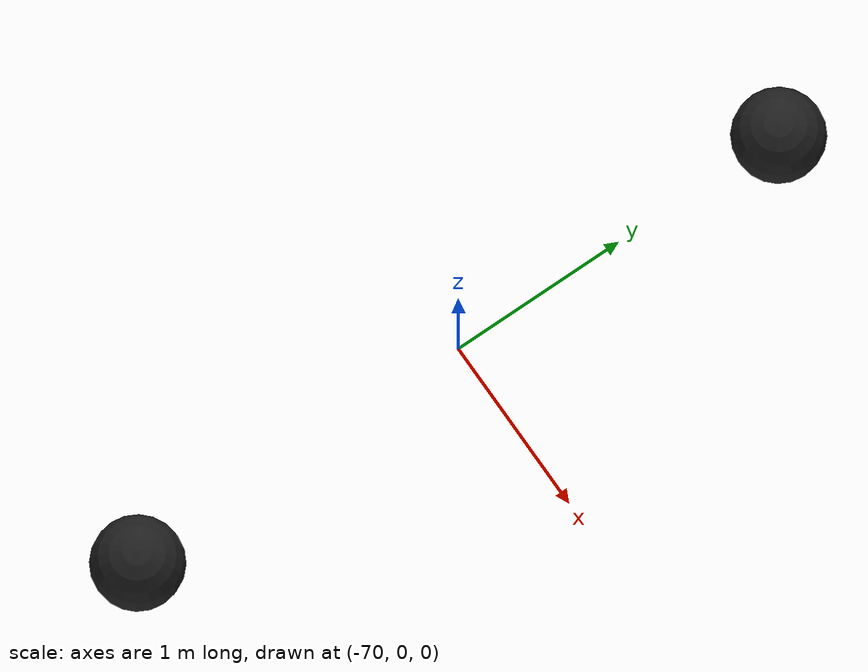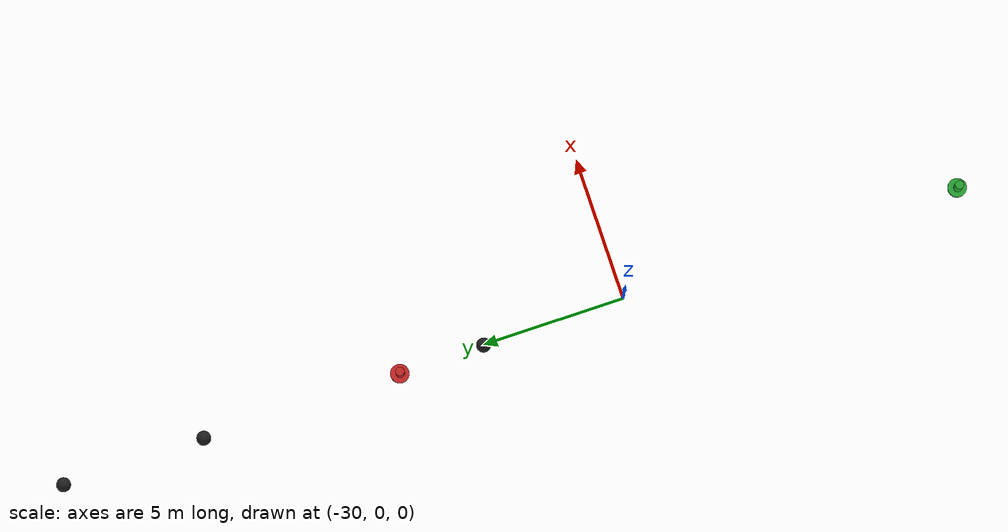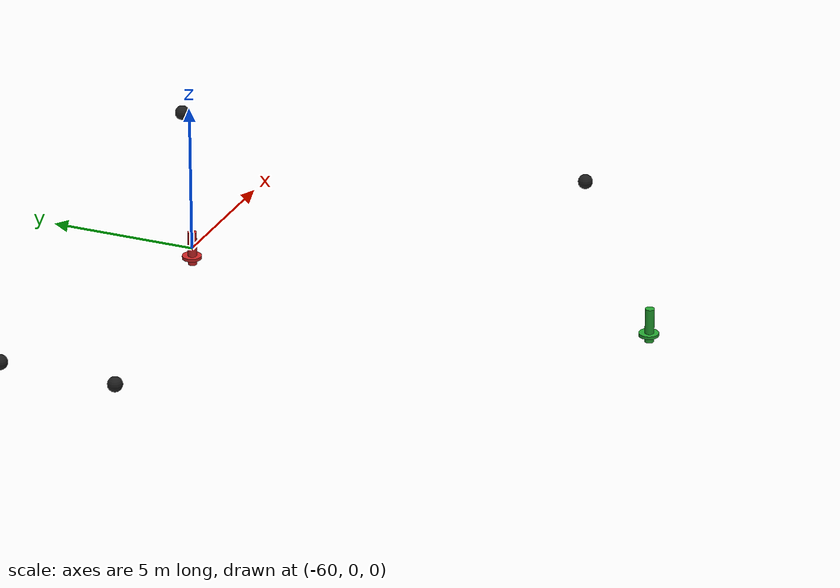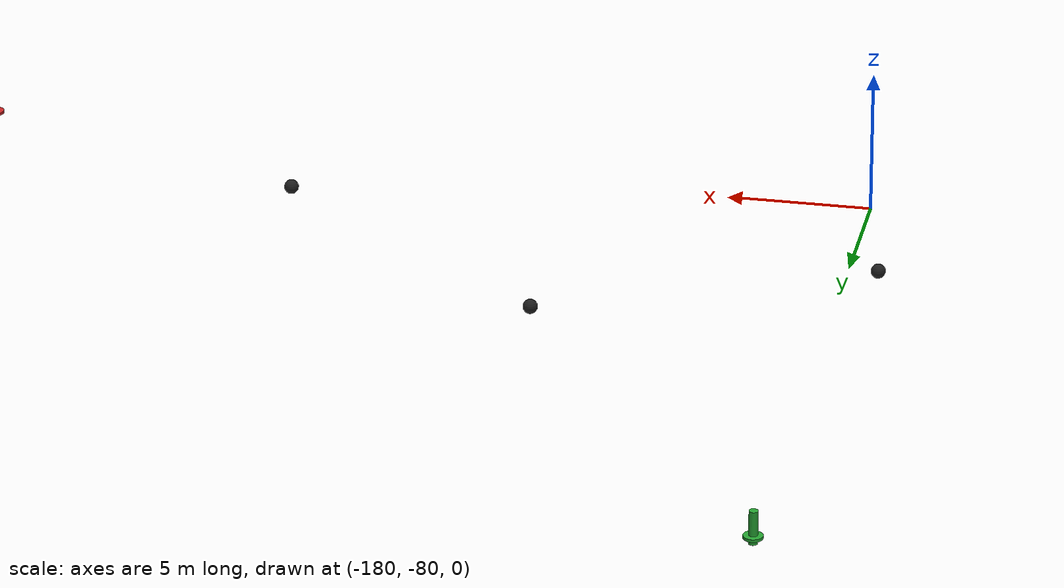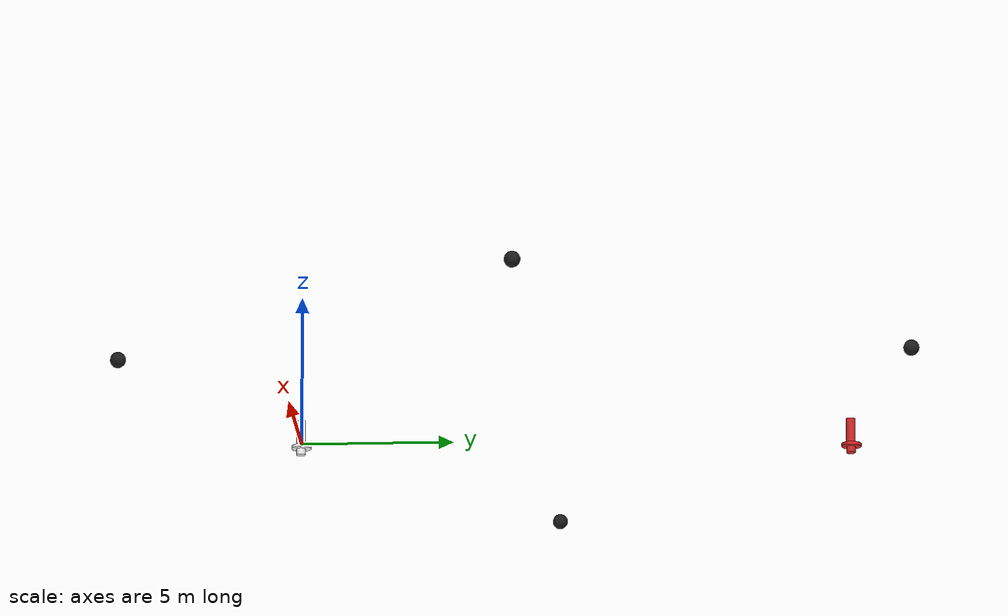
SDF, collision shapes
<?xml version="1.0"?>
<!-- Model for the short navigation course -->
<sdf version="1.6">
  <model name="short_navigation_course_5">

    <!-- Starboard_border -->
    <include>
      <name>red_bound_0</name>
      <pose>0 18 0 0 0 0</pose>
      <uri>https://fuel.gazebosim.org/1.0/openrobotics/models/mb_marker_buoy_red</uri>

      <plugin name="vrx::PolyhedraBuoyancyDrag"
        filename="libPolyhedraBuoyancyDrag.so">
        <fluid_density>1000</fluid_density>
        <fluid_level>0.0</fluid_level>
        <linear_drag>25.0</linear_drag>
        <angular_drag>2.0</angular_drag>
        <buoyancy name="collision_outer">
          <link_name>link</link_name>
          <pose>0 0 -0.3 0 0 0</pose>
          <geometry>
            <cylinder>
              <radius>0.325</radius>
              <length>0.1</length>
            </cylinder>
          </geometry>
        </buoyancy>
        <wavefield>
          <size>1000 1000</size>
          <cell_count>50 50</cell_count>
          <wave>
            <model>PMS</model>
            <period>5.0</period>
            <number>3</number>
            <scale>1.1</scale>
            <gain>0.3</gain>
            <direction>1 0</direction>
            <angle>0.4</angle>
            <tau>2.0</tau>
            <amplitude>0.0</amplitude>
            <steepness>0.0</steepness>
          </wave>
        </wavefield>
      </plugin>

      <plugin filename="gz-sim-odometry-publisher-system"
        name="gz::sim::systems::OdometryPublisher">
        <dimensions>3</dimensions>
        <odom_publish_frequency>10.0000</odom_publish_frequency>
        <odom_frame>world</odom_frame>
        <robot_base_frame>robotx_gt/red_bound_0</robot_base_frame>
        <odom_topic>/robotx/red_bound_0/pose</odom_topic>
        <gaussian_noise>0.0</gaussian_noise>
        <name>red_bound_0/pose</name>
      </plugin>
    </include>

    <include>
      <name>red_bound_1</name>
      <pose>-30 8 0 0 0 0</pose>
      <uri>https://fuel.gazebosim.org/1.0/openrobotics/models/mb_marker_buoy_red</uri>

      <plugin name="vrx::PolyhedraBuoyancyDrag"
        filename="libPolyhedraBuoyancyDrag.so">
        <fluid_density>1000</fluid_density>
        <fluid_level>0.0</fluid_level>
        <linear_drag>25.0</linear_drag>
        <angular_drag>2.0</angular_drag>
        <buoyancy name="collision_outer">
          <link_name>link</link_name>
          <pose>0 0 -0.3 0 0 0</pose>
          <geometry>
            <cylinder>
              <radius>0.325</radius>
              <length>0.1</length>
            </cylinder>
          </geometry>
        </buoyancy>
        <wavefield>
          <size>1000 1000</size>
          <cell_count>50 50</cell_count>
          <wave>
            <model>PMS</model>
            <period>5.0</period>
            <number>3</number>
            <scale>1.1</scale>
            <gain>0.3</gain>
            <direction>1 0</direction>
            <angle>0.4</angle>
            <tau>2.0</tau>
            <amplitude>0.0</amplitude>
            <steepness>0.0</steepness>
          </wave>
        </wavefield>
      </plugin>

      <plugin filename="gz-sim-odometry-publisher-system"
        name="gz::sim::systems::OdometryPublisher">
        <dimensions>3</dimensions>
        <odom_publish_frequency>10.0000</odom_publish_frequency>
        <odom_frame>world</odom_frame>
        <robot_base_frame>robotx_gt/red_bound_1</robot_base_frame>
        <odom_topic>/robotx/red_bound_1/pose</odom_topic>
        <gaussian_noise>0.0</gaussian_noise>
        <name>red_bound_1/pose</name>
      </plugin>
    </include>

    <include>
      <name>red_bound_2</name>
      <pose>-60 0 0 0 0 0</pose>
      <uri>https://fuel.gazebosim.org/1.0/openrobotics/models/mb_marker_buoy_red</uri>

      <plugin name="vrx::PolyhedraBuoyancyDrag"
        filename="libPolyhedraBuoyancyDrag.so">
        <fluid_density>1000</fluid_density>
        <fluid_level>0.0</fluid_level>
        <linear_drag>25.0</linear_drag>
        <angular_drag>2.0</angular_drag>
        <buoyancy name="collision_outer">
          <link_name>link</link_name>
          <pose>0 0 -0.3 0 0 0</pose>
          <geometry>
            <cylinder>
              <radius>0.325</radius>
              <length>0.1</length>
            </cylinder>
          </geometry>
        </buoyancy>
        <wavefield>
          <size>1000 1000</size>
          <cell_count>50 50</cell_count>
          <wave>
            <model>PMS</model>
            <period>5.0</period>
            <number>3</number>
            <scale>1.1</scale>
            <gain>0.3</gain>
            <direction>1 0</direction>
            <angle>0.4</angle>
            <tau>2.0</tau>
            <amplitude>0.0</amplitude>
            <steepness>0.0</steepness>
          </wave>
        </wavefield>
      </plugin>

      <plugin filename="gz-sim-odometry-publisher-system"
        name="gz::sim::systems::OdometryPublisher">
        <dimensions>3</dimensions>
        <odom_publish_frequency>10.0000</odom_publish_frequency>
        <odom_frame>world</odom_frame>
        <robot_base_frame>robotx_gt/red_bound_2</robot_base_frame>
        <odom_topic>/robotx/red_bound_2/pose</odom_topic>
        <gaussian_noise>0.0</gaussian_noise>
        <name>red_bound_2/pose</name>
      </plugin>
    </include>

    <include>
      <name>red_bound_3</name>
      <pose>-90 12 0 0 0 0</pose>
      <uri>https://fuel.gazebosim.org/1.0/openrobotics/models/mb_marker_buoy_red</uri>

      <plugin name="vrx::PolyhedraBuoyancyDrag"
        filename="libPolyhedraBuoyancyDrag.so">
        <fluid_density>1000</fluid_density>
        <fluid_level>0.0</fluid_level>
        <linear_drag>25.0</linear_drag>
        <angular_drag>2.0</angular_drag>
        <buoyancy name="collision_outer">
          <link_name>link</link_name>
          <pose>0 0 -0.3 0 0 0</pose>
          <geometry>
            <cylinder>
              <radius>0.325</radius>
              <length>0.1</length>
            </cylinder>
          </geometry>
        </buoyancy>
        <wavefield>
          <size>1000 1000</size>
          <cell_count>50 50</cell_count>
          <wave>
            <model>PMS</model>
            <period>5.0</period>
            <number>3</number>
            <scale>1.1</scale>
            <gain>0.3</gain>
            <direction>1 0</direction>
            <angle>0.4</angle>
            <tau>2.0</tau>
            <amplitude>0.0</amplitude>
            <steepness>0.0</steepness>
          </wave>
        </wavefield>
      </plugin>

      <plugin filename="gz-sim-odometry-publisher-system"
        name="gz::sim::systems::OdometryPublisher">
        <dimensions>3</dimensions>
        <odom_publish_frequency>10.0000</odom_publish_frequency>
        <odom_frame>world</odom_frame>
        <robot_base_frame>robotx_gt/red_bound_3</robot_base_frame>
        <odom_topic>/robotx/red_bound_3/pose</odom_topic>
        <gaussian_noise>0.0</gaussian_noise>
        <name>red_bound_3/pose</name>
      </plugin>
    </include>

    <include>
      <name>red_bound_4</name>
      <pose>-140 0 0 0 0 0</pose>
      <uri>https://fuel.gazebosim.org/1.0/openrobotics/models/mb_marker_buoy_red</uri>

      <plugin name="vrx::PolyhedraBuoyancyDrag"
        filename="libPolyhedraBuoyancyDrag.so">
        <fluid_density>1000</fluid_density>
        <fluid_level>0.0</fluid_level>
        <linear_drag>25.0</linear_drag>
        <angular_drag>2.0</angular_drag>
        <buoyancy name="collision_outer">
          <link_name>link</link_name>
          <pose>0 0 -0.3 0 0 0</pose>
          <geometry>
            <cylinder>
              <radius>0.325</radius>
              <length>0.1</length>
            </cylinder>
          </geometry>
        </buoyancy>
        <wavefield>
          <size>1000 1000</size>
          <cell_count>50 50</cell_count>
          <wave>
            <model>PMS</model>
            <period>5.0</period>
            <number>3</number>
            <scale>1.1</scale>
            <gain>0.3</gain>
            <direction>1 0</direction>
            <angle>0.4</angle>
            <tau>2.0</tau>
            <amplitude>0.0</amplitude>
            <steepness>0.0</steepness>
          </wave>
        </wavefield>
      </plugin>

      <plugin filename="gz-sim-odometry-publisher-system"
        name="gz::sim::systems::OdometryPublisher">
        <dimensions>3</dimensions>
        <odom_publish_frequency>10.0000</odom_publish_frequency>
        <odom_frame>world</odom_frame>
        <robot_base_frame>robotx_gt/red_bound_4</robot_base_frame>
        <odom_topic>/robotx/red_bound_4/pose</odom_topic>
        <gaussian_noise>0.0</gaussian_noise>
        <name>red_bound_4/pose</name>
      </plugin>
    </include>

    <include>
      <name>red_bound_5</name>
      <pose>-180 -10 0 0 0 0</pose>
      <uri>https://fuel.gazebosim.org/1.0/openrobotics/models/mb_marker_buoy_red</uri>

      <plugin name="vrx::PolyhedraBuoyancyDrag"
        filename="libPolyhedraBuoyancyDrag.so">
        <fluid_density>1000</fluid_density>
        <fluid_level>0.0</fluid_level>
        <linear_drag>25.0</linear_drag>
        <angular_drag>2.0</angular_drag>
        <buoyancy name="collision_outer">
          <link_name>link</link_name>
          <pose>0 0 -0.3 0 0 0</pose>
          <geometry>
            <cylinder>
              <radius>0.325</radius>
              <length>0.1</length>
            </cylinder>
          </geometry>
        </buoyancy>
        <wavefield>
          <size>1000 1000</size>
          <cell_count>50 50</cell_count>
          <wave>
            <model>PMS</model>
            <period>5.0</period>
            <number>3</number>
            <scale>1.1</scale>
            <gain>0.3</gain>
            <direction>1 0</direction>
            <angle>0.4</angle>
            <tau>2.0</tau>
            <amplitude>0.0</amplitude>
            <steepness>0.0</steepness>
          </wave>
        </wavefield>
      </plugin>

      <plugin filename="gz-sim-odometry-publisher-system"
        name="gz::sim::systems::OdometryPublisher">
        <dimensions>3</dimensions>
        <odom_publish_frequency>10.0000</odom_publish_frequency>
        <odom_frame>world</odom_frame>
        <robot_base_frame>robotx_gt/red_bound_5</robot_base_frame>
        <odom_topic>/robotx/red_bound_5/pose</odom_topic>
        <gaussian_noise>0.0</gaussian_noise>
        <name>red_bound_5/pose</name>
      </plugin>
    </include>

    <include>
      <name>red_bound_6</name>
      <pose>-199 -70 0 0 0 0</pose>
      <uri>https://fuel.gazebosim.org/1.0/openrobotics/models/mb_marker_buoy_red</uri>

      <plugin name="vrx::PolyhedraBuoyancyDrag"
        filename="libPolyhedraBuoyancyDrag.so">
        <fluid_density>1000</fluid_density>
        <fluid_level>0.0</fluid_level>
        <linear_drag>25.0</linear_drag>
        <angular_drag>2.0</angular_drag>
        <buoyancy name="collision_outer">
          <link_name>link</link_name>
          <pose>0 0 -0.3 0 0 0</pose>
          <geometry>
            <cylinder>
              <radius>0.325</radius>
              <length>0.1</length>
            </cylinder>
          </geometry>
        </buoyancy>
        <wavefield>
          <size>1000 1000</size>
          <cell_count>50 50</cell_count>
          <wave>
            <model>PMS</model>
            <period>5.0</period>
            <number>3</number>
            <scale>1.1</scale>
            <gain>0.3</gain>
            <direction>1 0</direction>
            <angle>0.4</angle>
            <tau>2.0</tau>
            <amplitude>0.0</amplitude>
            <steepness>0.0</steepness>
          </wave>
        </wavefield>
      </plugin>

      <plugin filename="gz-sim-odometry-publisher-system"
        name="gz::sim::systems::OdometryPublisher">
        <dimensions>3</dimensions>
        <odom_publish_frequency>10.0000</odom_publish_frequency>
        <odom_frame>world</odom_frame>
        <robot_base_frame>robotx_gt/red_bound_6</robot_base_frame>
        <odom_topic>/robotx/red_bound_6/pose</odom_topic>
        <gaussian_noise>0.0</gaussian_noise>
        <name>red_bound_6/pose</name>
      </plugin>
    </include>

    <include>
      <name>red_bound_7</name>
      <pose>-148 -83 0 0 0 0</pose>
      <uri>https://fuel.gazebosim.org/1.0/openrobotics/models/mb_marker_buoy_red</uri>

      <plugin name="vrx::PolyhedraBuoyancyDrag"
        filename="libPolyhedraBuoyancyDrag.so">
        <fluid_density>1000</fluid_density>
        <fluid_level>0.0</fluid_level>
        <linear_drag>25.0</linear_drag>
        <angular_drag>2.0</angular_drag>
        <buoyancy name="collision_outer">
          <link_name>link</link_name>
          <pose>0 0 -0.3 0 0 0</pose>
          <geometry>
            <cylinder>
              <radius>0.325</radius>
              <length>0.1</length>
            </cylinder>
          </geometry>
        </buoyancy>
        <wavefield>
          <size>1000 1000</size>
          <cell_count>50 50</cell_count>
          <wave>
            <model>PMS</model>
            <period>5.0</period>
            <number>3</number>
            <scale>1.1</scale>
            <gain>0.3</gain>
            <direction>1 0</direction>
            <angle>0.4</angle>
            <tau>2.0</tau>
            <amplitude>0.0</amplitude>
            <steepness>0.0</steepness>
          </wave>
        </wavefield>
      </plugin>

      <plugin filename="gz-sim-odometry-publisher-system"
        name="gz::sim::systems::OdometryPublisher">
        <dimensions>3</dimensions>
        <odom_publish_frequency>10.0000</odom_publish_frequency>
        <odom_frame>world</odom_frame>
        <robot_base_frame>robotx_gt/red_bound_7</robot_base_frame>
        <odom_topic>/robotx/red_bound_7/pose</odom_topic>
        <gaussian_noise>0.0</gaussian_noise>
        <name>red_bound_7/pose</name>
      </plugin>
    </include>

    <include>
      <name>red_bound_8</name>
      <pose>-102 -77 0 0 0 0</pose>
      <uri>https://fuel.gazebosim.org/1.0/openrobotics/models/mb_marker_buoy_red</uri>

      <plugin name="vrx::PolyhedraBuoyancyDrag"
        filename="libPolyhedraBuoyancyDrag.so">
        <fluid_density>1000</fluid_density>
        <fluid_level>0.0</fluid_level>
        <linear_drag>25.0</linear_drag>
        <angular_drag>2.0</angular_drag>
        <buoyancy name="collision_outer">
          <link_name>link</link_name>
          <pose>0 0 -0.3 0 0 0</pose>
          <geometry>
            <cylinder>
              <radius>0.325</radius>
              <length>0.1</length>
            </cylinder>
          </geometry>
        </buoyancy>
        <wavefield>
          <size>1000 1000</size>
          <cell_count>50 50</cell_count>
          <wave>
            <model>PMS</model>
            <period>5.0</period>
            <number>3</number>
            <scale>1.1</scale>
            <gain>0.3</gain>
            <direction>1 0</direction>
            <angle>0.4</angle>
            <tau>2.0</tau>
            <amplitude>0.0</amplitude>
            <steepness>0.0</steepness>
          </wave>
        </wavefield>
      </plugin>

      <plugin filename="gz-sim-odometry-publisher-system"
        name="gz::sim::systems::OdometryPublisher">
        <dimensions>3</dimensions>
        <odom_publish_frequency>10.0000</odom_publish_frequency>
        <odom_frame>world</odom_frame>
        <robot_base_frame>robotx_gt/red_bound_8</robot_base_frame>
        <odom_topic>/robotx/red_bound_8/pose</odom_topic>
        <gaussian_noise>0.0</gaussian_noise>
        <name>red_bound_8/pose</name>
      </plugin>
    </include>

    <!-- Port_border -->
    <include>
      <name>green_bound_0</name>
      <pose>0 0 0.2 0 0 0</pose>
      <uri>https://fuel.gazebosim.org/1.0/openrobotics/models/mb_marker_buoy_white</uri>

      <plugin name="vrx::PolyhedraBuoyancyDrag"
        filename="libPolyhedraBuoyancyDrag.so">
        <fluid_density>1000</fluid_density>
        <fluid_level>0.0</fluid_level>
        <linear_drag>25.0</linear_drag>
        <angular_drag>2.0</angular_drag>
        <buoyancy name="collision_outer">
          <link_name>link</link_name>
          <pose>0 0 -0.3 0 0 0</pose>
          <geometry>
            <cylinder>
              <radius>0.325</radius>
              <length>0.1</length>
            </cylinder>
          </geometry>
        </buoyancy>
        <wavefield>
          <size>1000 1000</size>
          <cell_count>50 50</cell_count>
          <wave>
            <model>PMS</model>
            <period>5.0</period>
            <number>3</number>
            <scale>1.1</scale>
            <gain>0.3</gain>
            <direction>1 0</direction>
            <angle>0.4</angle>
            <tau>2.0</tau>
            <amplitude>0.0</amplitude>
            <steepness>0.0</steepness>
          </wave>
        </wavefield>
      </plugin>

      <plugin filename="gz-sim-odometry-publisher-system"
        name="gz::sim::systems::OdometryPublisher">
        <dimensions>3</dimensions>
        <odom_publish_frequency>10.0000</odom_publish_frequency>
        <odom_frame>world</odom_frame>
        <robot_base_frame>robotx_gt/green_bound_0</robot_base_frame>
        <odom_topic>/robotx/green_bound_0/pose</odom_topic>
        <gaussian_noise>0.0</gaussian_noise>
        <name>green_bound_0/pose</name>
      </plugin>
    </include>

    <include>
      <name>green_bound_1</name>
      <pose>-30 -12 0.2 0 0 0</pose>
      <uri>https://fuel.gazebosim.org/1.0/openrobotics/models/mb_marker_buoy_green</uri>

      <plugin name="vrx::PolyhedraBuoyancyDrag"
        filename="libPolyhedraBuoyancyDrag.so">
        <fluid_density>1000</fluid_density>
        <fluid_level>0.0</fluid_level>
        <linear_drag>25.0</linear_drag>
        <angular_drag>2.0</angular_drag>
        <buoyancy name="collision_outer">
          <link_name>link</link_name>
          <pose>0 0 -0.3 0 0 0</pose>
          <geometry>
            <cylinder>
              <radius>0.325</radius>
              <length>0.1</length>
            </cylinder>
          </geometry>
        </buoyancy>
        <wavefield>
          <size>1000 1000</size>
          <cell_count>50 50</cell_count>
          <wave>
            <model>PMS</model>
            <period>5.0</period>
            <number>3</number>
            <scale>1.1</scale>
            <gain>0.3</gain>
            <direction>1 0</direction>
            <angle>0.4</angle>
            <tau>2.0</tau>
            <amplitude>0.0</amplitude>
            <steepness>0.0</steepness>
          </wave>
        </wavefield>
      </plugin>

      <plugin filename="gz-sim-odometry-publisher-system"
        name="gz::sim::systems::OdometryPublisher">
        <dimensions>3</dimensions>
        <odom_publish_frequency>10.0000</odom_publish_frequency>
        <odom_frame>world</odom_frame>
        <robot_base_frame>robotx_gt/green_bound_1</robot_base_frame>
        <odom_topic>/robotx/green_bound_1/pose</odom_topic>
        <gaussian_noise>0.0</gaussian_noise>
        <name>green_bound_1/pose</name>
      </plugin>
    </include>

    <include>
      <name>green_bound_2</name>
      <pose>-60 -16 0.2 0 0 0</pose>
      <uri>https://fuel.gazebosim.org/1.0/openrobotics/models/mb_marker_buoy_green</uri>
      <plugin name="vrx::PolyhedraBuoyancyDrag"
        filename="libPolyhedraBuoyancyDrag.so">
        <fluid_density>1000</fluid_density>
        <fluid_level>0.0</fluid_level>
        <linear_drag>25.0</linear_drag>
        <angular_drag>2.0</angular_drag>
        <buoyancy name="collision_outer">
          <link_name>link</link_name>
          <pose>0 0 -0.3 0 0 0</pose>
          <geometry>
            <cylinder>
              <radius>0.325</radius>
              <length>0.1</length>
            </cylinder>
          </geometry>
        </buoyancy>
        <wavefield>
          <size>1000 1000</size>
          <cell_count>50 50</cell_count>
          <wave>
            <model>PMS</model>
            <period>5.0</period>
            <number>3</number>
            <scale>1.1</scale>
            <gain>0.3</gain>
            <direction>1 0</direction>
            <angle>0.4</angle>
            <tau>2.0</tau>
            <amplitude>0.0</amplitude>
            <steepness>0.0</steepness>
          </wave>
        </wavefield>
      </plugin>

      <plugin filename="gz-sim-odometry-publisher-system"
        name="gz::sim::systems::OdometryPublisher">
        <dimensions>3</dimensions>
        <odom_publish_frequency>10.0000</odom_publish_frequency>
        <odom_frame>world</odom_frame>
        <robot_base_frame>robotx_gt/green_bound_2</robot_base_frame>
        <odom_topic>/robotx/green_bound_2/pose</odom_topic>
        <gaussian_noise>0.0</gaussian_noise>
        <name>green_bound_2/pose</name>
      </plugin>
    </include>

    <include>
      <name>green_bound_3</name>
      <pose>-103 0 0.2 0 0 0</pose>
      <uri>https://fuel.gazebosim.org/1.0/openrobotics/models/mb_marker_buoy_green</uri>
      <plugin name="vrx::PolyhedraBuoyancyDrag"
        filename="libPolyhedraBuoyancyDrag.so">
        <fluid_density>1000</fluid_density>
        <fluid_level>0.0</fluid_level>
        <linear_drag>25.0</linear_drag>
        <angular_drag>2.0</angular_drag>
        <buoyancy name="collision_outer">
          <link_name>link</link_name>
          <pose>0 0 -0.3 0 0 0</pose>
          <geometry>
            <cylinder>
              <radius>0.325</radius>
              <length>0.1</length>
            </cylinder>
          </geometry>
        </buoyancy>
        <wavefield>
          <size>1000 1000</size>
          <cell_count>50 50</cell_count>
          <wave>
            <model>PMS</model>
            <period>5.0</period>
            <number>3</number>
            <scale>1.1</scale>
            <gain>0.3</gain>
            <direction>1 0</direction>
            <angle>0.4</angle>
            <tau>2.0</tau>
            <amplitude>0.0</amplitude>
            <steepness>0.0</steepness>
          </wave>
        </wavefield>
      </plugin>

      <plugin filename="gz-sim-odometry-publisher-system"
        name="gz::sim::systems::OdometryPublisher">
        <dimensions>3</dimensions>
        <odom_publish_frequency>10.0000</odom_publish_frequency>
        <odom_frame>world</odom_frame>
        <robot_base_frame>robotx_gt/green_bound_3</robot_base_frame>
        <odom_topic>/robotx/green_bound_3/pose</odom_topic>
        <gaussian_noise>0.0</gaussian_noise>
        <name>green_bound_3/pose</name>
      </plugin>
    </include>

    <include>
      <name>green_bound_4</name>
      <pose>-140 -20 0.2 0 0 0</pose>
      <uri>https://fuel.gazebosim.org/1.0/openrobotics/models/mb_marker_buoy_green</uri>
      <plugin name="vrx::PolyhedraBuoyancyDrag"
        filename="libPolyhedraBuoyancyDrag.so">
        <fluid_density>1000</fluid_density>
        <fluid_level>0.0</fluid_level>
        <linear_drag>25.0</linear_drag>
        <angular_drag>2.0</angular_drag>
        <buoyancy name="collision_outer">
          <link_name>link</link_name>
          <pose>0 0 -0.3 0 0 0</pose>
          <geometry>
            <cylinder>
              <radius>0.325</radius>
              <length>0.1</length>
            </cylinder>
          </geometry>
        </buoyancy>
        <wavefield>
          <size>1000 1000</size>
          <cell_count>50 50</cell_count>
          <wave>
            <model>PMS</model>
            <period>5.0</period>
            <number>3</number>
            <scale>1.1</scale>
            <gain>0.3</gain>
            <direction>1 0</direction>
            <angle>0.4</angle>
            <tau>2.0</tau>
            <amplitude>0.0</amplitude>
            <steepness>0.0</steepness>
          </wave>
        </wavefield>
      </plugin>

      <plugin filename="gz-sim-odometry-publisher-system"
        name="gz::sim::systems::OdometryPublisher">
        <dimensions>3</dimensions>
        <odom_publish_frequency>10.0000</odom_publish_frequency>
        <odom_frame>world</odom_frame>
        <robot_base_frame>robotx_gt/green_bound_4</robot_base_frame>
        <odom_topic>/robotx/green_bound_4/pose</odom_topic>
        <gaussian_noise>0.0</gaussian_noise>
        <name>green_bound_4/pose</name>
      </plugin>
    </include>

    <include>
      <name>green_bound_5</name>
      <pose>-170 -30 0.2 0 0 0</pose>
      <uri>https://fuel.gazebosim.org/1.0/openrobotics/models/mb_marker_buoy_green</uri>
      <plugin name="vrx::PolyhedraBuoyancyDrag"
        filename="libPolyhedraBuoyancyDrag.so">
        <fluid_density>1000</fluid_density>
        <fluid_level>0.0</fluid_level>
        <linear_drag>25.0</linear_drag>
        <angular_drag>2.0</angular_drag>
        <buoyancy name="collision_outer">
          <link_name>link</link_name>
          <pose>0 0 -0.3 0 0 0</pose>
          <geometry>
            <cylinder>
              <radius>0.325</radius>
              <length>0.1</length>
            </cylinder>
          </geometry>
        </buoyancy>
        <wavefield>
          <size>1000 1000</size>
          <cell_count>50 50</cell_count>
          <wave>
            <model>PMS</model>
            <period>5.0</period>
            <number>3</number>
            <scale>1.1</scale>
            <gain>0.3</gain>
            <direction>1 0</direction>
            <angle>0.4</angle>
            <tau>2.0</tau>
            <amplitude>0.0</amplitude>
            <steepness>0.0</steepness>
          </wave>
        </wavefield>
      </plugin>

      <plugin filename="gz-sim-odometry-publisher-system"
        name="gz::sim::systems::OdometryPublisher">
        <dimensions>3</dimensions>
        <odom_publish_frequency>10.0000</odom_publish_frequency>
        <odom_frame>world</odom_frame>
        <robot_base_frame>robotx_gt/green_bound_5</robot_base_frame>
        <odom_topic>/robotx/green_bound_5/pose</odom_topic>
        <gaussian_noise>0.0</gaussian_noise>
        <name>green_bound_5/pose</name>
      </plugin>
    </include>

    <include>
      <name>green_bound_6</name>
      <pose>-180 -55 0.2 0 0 0</pose>
      <uri>https://fuel.gazebosim.org/1.0/openrobotics/models/mb_marker_buoy_green</uri>
      <plugin name="vrx::PolyhedraBuoyancyDrag"
        filename="libPolyhedraBuoyancyDrag.so">
        <fluid_density>1000</fluid_density>
        <fluid_level>0.0</fluid_level>
        <linear_drag>25.0</linear_drag>
        <angular_drag>2.0</angular_drag>
        <buoyancy name="collision_outer">
          <link_name>link</link_name>
          <pose>0 0 -0.3 0 0 0</pose>
          <geometry>
            <cylinder>
              <radius>0.325</radius>
              <length>0.1</length>
            </cylinder>
          </geometry>
        </buoyancy>
        <wavefield>
          <size>1000 1000</size>
          <cell_count>50 50</cell_count>
          <wave>
            <model>PMS</model>
            <period>5.0</period>
            <number>3</number>
            <scale>1.1</scale>
            <gain>0.3</gain>
            <direction>1 0</direction>
            <angle>0.4</angle>
            <tau>2.0</tau>
            <amplitude>0.0</amplitude>
            <steepness>0.0</steepness>
          </wave>
        </wavefield>
      </plugin>

      <plugin filename="gz-sim-odometry-publisher-system"
        name="gz::sim::systems::OdometryPublisher">
        <dimensions>3</dimensions>
        <odom_publish_frequency>10.0000</odom_publish_frequency>
        <odom_frame>world</odom_frame>
        <robot_base_frame>robotx_gt/green_bound_6</robot_base_frame>
        <odom_topic>/robotx/green_bound_6/pose</odom_topic>
        <gaussian_noise>0.0</gaussian_noise>
        <name>green_bound_6/pose</name>
      </plugin>
    </include>

    <include>
      <name>green_bound_7</name>
      <pose>-145 -60 0.2 0 0 0</pose>
      <uri>https://fuel.gazebosim.org/1.0/openrobotics/models/mb_marker_buoy_green</uri>
      <plugin name="vrx::PolyhedraBuoyancyDrag"
        filename="libPolyhedraBuoyancyDrag.so">
        <fluid_density>1000</fluid_density>
        <fluid_level>0.0</fluid_level>
        <linear_drag>25.0</linear_drag>
        <angular_drag>2.0</angular_drag>
        <buoyancy name="collision_outer">
          <link_name>link</link_name>
          <pose>0 0 -0.3 0 0 0</pose>
          <geometry>
            <cylinder>
              <radius>0.325</radius>
              <length>0.1</length>
            </cylinder>
          </geometry>
        </buoyancy>
        <wavefield>
          <size>1000 1000</size>
          <cell_count>50 50</cell_count>
          <wave>
            <model>PMS</model>
            <period>5.0</period>
            <number>3</number>
            <scale>1.1</scale>
            <gain>0.3</gain>
            <direction>1 0</direction>
            <angle>0.4</angle>
            <tau>2.0</tau>
            <amplitude>0.0</amplitude>
            <steepness>0.0</steepness>
          </wave>
        </wavefield>
      </plugin>

      <plugin filename="gz-sim-odometry-publisher-system"
        name="gz::sim::systems::OdometryPublisher">
        <dimensions>3</dimensions>
        <odom_publish_frequency>10.0000</odom_publish_frequency>
        <odom_frame>world</odom_frame>
        <robot_base_frame>robotx_gt/green_bound_7</robot_base_frame>
        <odom_topic>/robotx/green_bound_7/pose</odom_topic>
        <gaussian_noise>0.0</gaussian_noise>
        <name>green_bound_7/pose</name>
      </plugin>
    </include>

    <include>
      <name>green_bound_8</name>
      <pose>-108 -58 0.2 0 0 0</pose>
      <uri>https://fuel.gazebosim.org/1.0/openrobotics/models/mb_marker_buoy_black</uri>
      <plugin name="vrx::PolyhedraBuoyancyDrag"
        filename="libPolyhedraBuoyancyDrag.so">
        <fluid_density>1000</fluid_density>
        <fluid_level>0.0</fluid_level>
        <linear_drag>25.0</linear_drag>
        <angular_drag>2.0</angular_drag>
        <buoyancy name="collision_outer">
          <link_name>link</link_name>
          <pose>0 0 -0.3 0 0 0</pose>
          <geometry>
            <cylinder>
              <radius>0.325</radius>
              <length>0.1</length>
            </cylinder>
          </geometry>
        </buoyancy>
        <wavefield>
          <size>1000 1000</size>
          <cell_count>50 50</cell_count>
          <wave>
            <model>PMS</model>
            <period>5.0</period>
            <number>3</number>
            <scale>1.1</scale>
            <gain>0.3</gain>
            <direction>1 0</direction>
            <angle>0.4</angle>
            <tau>2.0</tau>
            <amplitude>0.0</amplitude>
            <steepness>0.0</steepness>
          </wave>
        </wavefield>
      </plugin>

      <plugin filename="gz-sim-odometry-publisher-system"
        name="gz::sim::systems::OdometryPublisher">
        <dimensions>3</dimensions>
        <odom_publish_frequency>10.0000</odom_publish_frequency>
        <odom_frame>world</odom_frame>
        <robot_base_frame>robotx_gt/green_bound_8</robot_base_frame>
        <odom_topic>/robotx/green_bound_8/pose</odom_topic>
        <gaussian_noise>0.0</gaussian_noise>
        <name>green_bound_8/pose</name>
      </plugin>
    </include>

    <!-- Obstacles -->
    <include>
      <name>obstacle_0</name>
      <pose>-10 8 0.0 0 0 0 </pose>
      <uri>https://fuel.gazebosim.org/1.0/openrobotics/models/mb_round_buoy_black</uri>
      <plugin name="vrx::PolyhedraBuoyancyDrag"
        filename="libPolyhedraBuoyancyDrag.so">
        <fluid_density>1000</fluid_density>
        <fluid_level>0.0</fluid_level>
        <linear_drag>25.0</linear_drag>
        <angular_drag>2.0</angular_drag>
        <buoyancy name="collision_outer">
          <link_name>link</link_name>
          <pose>0 0 0 0 0 0</pose>
          <geometry>
            <sphere>
              <radius>0.25</radius>
            </sphere>
          </geometry>
        </buoyancy>
        <wavefield>
          <topic>/vrx/wavefield/parameters</topic>
        </wavefield>
      </plugin>

      <plugin filename="gz-sim-odometry-publisher-system"
        name="gz::sim::systems::OdometryPublisher">
        <dimensions>3</dimensions>
        <odom_publish_frequency>10.0000</odom_publish_frequency>
        <odom_frame>world</odom_frame>
        <robot_base_frame>robotx_gt/obstacle_0</robot_base_frame>
        <odom_topic>/robotx/obstacle_0/pose</odom_topic>
        <gaussian_noise>0.0</gaussian_noise>
        <name>obstacle_0/pose</name>
      </plugin>
    </include>

    <include>
      <name>obstacle_1</name>
      <pose>-30 20 0.0 0 0 0 </pose>
      <uri>https://fuel.gazebosim.org/1.0/openrobotics/models/mb_round_buoy_black</uri>
      <plugin name="vrx::PolyhedraBuoyancyDrag"
        filename="libPolyhedraBuoyancyDrag.so">
        <fluid_density>1000</fluid_density>
        <fluid_level>0.0</fluid_level>
        <linear_drag>25.0</linear_drag>
        <angular_drag>2.0</angular_drag>
        <buoyancy name="collision_outer">
          <link_name>link</link_name>
          <pose>0 0 0 0 0 0</pose>
          <geometry>
            <sphere>
              <radius>0.25</radius>
            </sphere>
          </geometry>
        </buoyancy>
        <wavefield>
          <topic>/vrx/wavefield/parameters</topic>
        </wavefield>
      </plugin>

      <plugin filename="gz-sim-odometry-publisher-system"
        name="gz::sim::systems::OdometryPublisher">
        <dimensions>3</dimensions>
        <odom_publish_frequency>10.0000</odom_publish_frequency>
        <odom_frame>world</odom_frame>
        <robot_base_frame>robotx_gt/obstacle_1</robot_base_frame>
        <odom_topic>/robotx/obstacle_1/pose</odom_topic>
        <gaussian_noise>0.0</gaussian_noise>
        <name>obstacle_1/pose</name>
      </plugin>
    </include>

    <include>
      <name>obstacle_2</name>
      <pose>-30 15 0.0 0 0 0 </pose>
      <uri>https://fuel.gazebosim.org/1.0/openrobotics/models/mb_round_buoy_black</uri>
      <plugin name="vrx::PolyhedraBuoyancyDrag"
        filename="libPolyhedraBuoyancyDrag.so">
        <fluid_density>1000</fluid_density>
        <fluid_level>0.0</fluid_level>
        <linear_drag>25.0</linear_drag>
        <angular_drag>2.0</angular_drag>
        <buoyancy name="collision_outer">
          <link_name>link</link_name>
          <pose>0 0 0 0 0 0</pose>
          <geometry>
            <sphere>
              <radius>0.25</radius>
            </sphere>
          </geometry>
        </buoyancy>
        <wavefield>
          <topic>/vrx/wavefield/parameters</topic>
        </wavefield>
      </plugin>

      <plugin filename="gz-sim-odometry-publisher-system"
        name="gz::sim::systems::OdometryPublisher">
        <dimensions>3</dimensions>
        <odom_publish_frequency>10.0000</odom_publish_frequency>
        <odom_frame>world</odom_frame>
        <robot_base_frame>robotx_gt/obstacle_2</robot_base_frame>
        <odom_topic>/robotx/obstacle_2/pose</odom_topic>
        <gaussian_noise>0.0</gaussian_noise>
        <name>obstacle_2/pose</name>
      </plugin>
    </include>

    <include>
      <name>obstacle_3</name>
      <pose>-30 5 0.0 0 0 0 </pose>
      <uri>https://fuel.gazebosim.org/1.0/openrobotics/models/mb_round_buoy_black</uri>
      <plugin name="vrx::PolyhedraBuoyancyDrag"
        filename="libPolyhedraBuoyancyDrag.so">
        <fluid_density>1000</fluid_density>
        <fluid_level>0.0</fluid_level>
        <linear_drag>25.0</linear_drag>
        <angular_drag>2.0</angular_drag>
        <buoyancy name="collision_outer">
          <link_name>link</link_name>
          <pose>0 0 0 0 0 0</pose>
          <geometry>
            <sphere>
              <radius>0.25</radius>
            </sphere>
          </geometry>
        </buoyancy>
        <wavefield>
          <topic>/vrx/wavefield/parameters</topic>
        </wavefield>
      </plugin>

      <plugin filename="gz-sim-odometry-publisher-system"
        name="gz::sim::systems::OdometryPublisher">
        <dimensions>3</dimensions>
        <odom_publish_frequency>10.0000</odom_publish_frequency>
        <odom_frame>world</odom_frame>
        <robot_base_frame>robotx_gt/obstacle_3</robot_base_frame>
        <odom_topic>/robotx/obstacle_3/pose</odom_topic>
        <gaussian_noise>0.0</gaussian_noise>
        <name>obstacle_3/pose</name>
      </plugin>
    </include>

    <include>
      <name>obstacle_4</name>
      <pose>-50 5 0.0 0 0 0 </pose>
      <uri>https://fuel.gazebosim.org/1.0/openrobotics/models/mb_round_buoy_black</uri>
      <plugin name="vrx::PolyhedraBuoyancyDrag"
        filename="libPolyhedraBuoyancyDrag.so">
        <fluid_density>1000</fluid_density>
        <fluid_level>0.0</fluid_level>
        <linear_drag>25.0</linear_drag>
        <angular_drag>2.0</angular_drag>
        <buoyancy name="collision_outer">
          <link_name>link</link_name>
          <pose>0 0 0 0 0 0</pose>
          <geometry>
            <sphere>
              <radius>0.25</radius>
            </sphere>
          </geometry>
        </buoyancy>
        <wavefield>
          <topic>/vrx/wavefield/parameters</topic>
        </wavefield>
      </plugin>

      <plugin filename="gz-sim-odometry-publisher-system"
        name="gz::sim::systems::OdometryPublisher">
        <dimensions>3</dimensions>
        <odom_publish_frequency>10.0000</odom_publish_frequency>
        <odom_frame>world</odom_frame>
        <robot_base_frame>robotx_gt/obstacle_4</robot_base_frame>
        <odom_topic>/robotx/obstacle_4/pose</odom_topic>
        <gaussian_noise>0.0</gaussian_noise>
        <name>obstacle_4/pose</name>
      </plugin>
    </include>

    <include>
      <name>obstacle_5</name>
      <pose>-50 -10 0.0 0 0 0 </pose>
      <uri>https://fuel.gazebosim.org/1.0/openrobotics/models/mb_round_buoy_black</uri>
      <plugin name="vrx::PolyhedraBuoyancyDrag"
        filename="libPolyhedraBuoyancyDrag.so">
        <fluid_density>1000</fluid_density>
        <fluid_level>0.0</fluid_level>
        <linear_drag>25.0</linear_drag>
        <angular_drag>2.0</angular_drag>
        <buoyancy name="collision_outer">
          <link_name>link</link_name>
          <pose>0 0 0 0 0 0</pose>
          <geometry>
            <sphere>
              <radius>0.25</radius>
            </sphere>
          </geometry>
        </buoyancy>
        <wavefield>
          <topic>/vrx/wavefield/parameters</topic>
        </wavefield>
      </plugin>

      <plugin filename="gz-sim-odometry-publisher-system"
        name="gz::sim::systems::OdometryPublisher">
        <dimensions>3</dimensions>
        <odom_publish_frequency>10.0000</odom_publish_frequency>
        <odom_frame>world</odom_frame>
        <robot_base_frame>robotx_gt/obstacle_5</robot_base_frame>
        <odom_topic>/robotx/obstacle_5/pose</odom_topic>
        <gaussian_noise>0.0</gaussian_noise>
        <name>obstacle_5/pose</name>
      </plugin>
    </include>

    <include>
      <name>obstacle_6</name>
      <pose>-70 -2 0.0 0 0 0 </pose>
      <uri>https://fuel.gazebosim.org/1.0/openrobotics/models/mb_round_buoy_black</uri>
      <plugin name="vrx::PolyhedraBuoyancyDrag"
        filename="libPolyhedraBuoyancyDrag.so">
        <fluid_density>1000</fluid_density>
        <fluid_level>0.0</fluid_level>
        <linear_drag>25.0</linear_drag>
        <angular_drag>2.0</angular_drag>
        <buoyancy name="collision_outer">
          <link_name>link</link_name>
          <pose>0 0 0 0 0 0</pose>
          <geometry>
            <sphere>
              <radius>0.25</radius>
            </sphere>
          </geometry>
        </buoyancy>
        <wavefield>
          <topic>/vrx/wavefield/parameters</topic>
        </wavefield>
      </plugin>

      <plugin filename="gz-sim-odometry-publisher-system"
        name="gz::sim::systems::OdometryPublisher">
        <dimensions>3</dimensions>
        <odom_publish_frequency>10.0000</odom_publish_frequency>
        <odom_frame>world</odom_frame>
        <robot_base_frame>robotx_gt/obstacle_6</robot_base_frame>
        <odom_topic>/robotx/obstacle_6/pose</odom_topic>
        <gaussian_noise>0.0</gaussian_noise>
        <name>obstacle_6/pose</name>
      </plugin>
    </include>

    <include>
      <name>obstacle_7</name>
      <pose>-70 2 0.0 0 0 0 </pose>
      <uri>https://fuel.gazebosim.org/1.0/openrobotics/models/mb_round_buoy_black</uri>
      <plugin name="vrx::PolyhedraBuoyancyDrag"
        filename="libPolyhedraBuoyancyDrag.so">
        <fluid_density>1000</fluid_density>
        <fluid_level>0.0</fluid_level>
        <linear_drag>25.0</linear_drag>
        <angular_drag>2.0</angular_drag>
        <buoyancy name="collision_outer">
          <link_name>link</link_name>
          <pose>0 0 0 0 0 0</pose>
          <geometry>
            <sphere>
              <radius>0.25</radius>
            </sphere>
          </geometry>
        </buoyancy>
        <wavefield>
          <topic>/vrx/wavefield/parameters</topic>
        </wavefield>
      </plugin>

      <plugin filename="gz-sim-odometry-publisher-system"
        name="gz::sim::systems::OdometryPublisher">
        <dimensions>3</dimensions>
        <odom_publish_frequency>10.0000</odom_publish_frequency>
        <odom_frame>world</odom_frame>
        <robot_base_frame>robotx_gt/obstacle_7</robot_base_frame>
        <odom_topic>/robotx/obstacle_7/pose</odom_topic>
        <gaussian_noise>0.0</gaussian_noise>
        <name>obstacle_7/pose</name>
      </plugin>
    </include>

    <include>
      <name>obstacle_8</name>
      <pose>10 20 0.0 0 0 0 </pose>
      <uri>https://fuel.gazebosim.org/1.0/openrobotics/models/mb_round_buoy_black</uri>
      <plugin name="vrx::PolyhedraBuoyancyDrag"
        filename="libPolyhedraBuoyancyDrag.so">
        <fluid_density>1000</fluid_density>
        <fluid_level>0.0</fluid_level>
        <linear_drag>25.0</linear_drag>
        <angular_drag>2.0</angular_drag>
        <buoyancy name="collision_outer">
          <link_name>link</link_name>
          <pose>0 0 0 0 0 0</pose>
          <geometry>
            <sphere>
              <radius>0.25</radius>
            </sphere>
          </geometry>
        </buoyancy>
        <wavefield>
          <topic>/vrx/wavefield/parameters</topic>
        </wavefield>
      </plugin>

      <plugin filename="gz-sim-odometry-publisher-system"
        name="gz::sim::systems::OdometryPublisher">
        <dimensions>3</dimensions>
        <odom_publish_frequency>10.0000</odom_publish_frequency>
        <odom_frame>world</odom_frame>
        <robot_base_frame>robotx_gt/obstacle_8</robot_base_frame>
        <odom_topic>/robotx/obstacle_8/pose</odom_topic>
        <gaussian_noise>0.0</gaussian_noise>
        <name>obstacle_8/pose</name>
      </plugin>
    </include>

    <include>
      <name>obstacle_9</name>
      <pose>20 8 0.0 0 0 0 </pose>
      <uri>https://fuel.gazebosim.org/1.0/openrobotics/models/mb_round_buoy_black</uri>
      <plugin name="vrx::PolyhedraBuoyancyDrag"
        filename="libPolyhedraBuoyancyDrag.so">
        <fluid_density>1000</fluid_density>
        <fluid_level>0.0</fluid_level>
        <linear_drag>25.0</linear_drag>
        <angular_drag>2.0</angular_drag>
        <buoyancy name="collision_outer">
          <link_name>link</link_name>
          <pose>0 0 0 0 0 0</pose>
          <geometry>
            <sphere>
              <radius>0.25</radius>
            </sphere>
          </geometry>
        </buoyancy>
        <wavefield>
          <topic>/vrx/wavefield/parameters</topic>
        </wavefield>
      </plugin>

      <plugin filename="gz-sim-odometry-publisher-system"
        name="gz::sim::systems::OdometryPublisher">
        <dimensions>3</dimensions>
        <odom_publish_frequency>10.0000</odom_publish_frequency>
        <odom_frame>world</odom_frame>
        <robot_base_frame>robotx_gt/obstacle_9</robot_base_frame>
        <odom_topic>/robotx/obstacle_9/pose</odom_topic>
        <gaussian_noise>0.0</gaussian_noise>
        <name>obstacle_9/pose</name>
      </plugin>
    </include>

    <include>
      <name>obstacle_10</name>
      <pose>10 -5 0.0 0 0 0 </pose>
      <uri>https://fuel.gazebosim.org/1.0/openrobotics/models/mb_round_buoy_black</uri>
      <plugin name="vrx::PolyhedraBuoyancyDrag"
        filename="libPolyhedraBuoyancyDrag.so">
        <fluid_density>1000</fluid_density>
        <fluid_level>0.0</fluid_level>
        <linear_drag>25.0</linear_drag>
        <angular_drag>2.0</angular_drag>
        <buoyancy name="collision_outer">
          <link_name>link</link_name>
          <pose>0 0 0 0 0 0</pose>
          <geometry>
            <sphere>
              <radius>0.25</radius>
            </sphere>
          </geometry>
        </buoyancy>
        <wavefield>
          <topic>/vrx/wavefield/parameters</topic>
        </wavefield>
      </plugin>

      <plugin filename="gz-sim-odometry-publisher-system"
        name="gz::sim::systems::OdometryPublisher">
        <dimensions>3</dimensions>
        <odom_publish_frequency>10.0000</odom_publish_frequency>
        <odom_frame>world</odom_frame>
        <robot_base_frame>robotx_gt/obstacle_10</robot_base_frame>
        <odom_topic>/robotx/obstacle_10/pose</odom_topic>
        <gaussian_noise>0.0</gaussian_noise>
        <name>obstacle_10/pose</name>
      </plugin>
    </include>

    <include>
      <name>obstacle_11</name>
      <pose>-115 10 0.0 0 0 0 </pose>
      <uri>https://fuel.gazebosim.org/1.0/openrobotics/models/mb_round_buoy_black</uri>
      <plugin name="vrx::PolyhedraBuoyancyDrag"
        filename="libPolyhedraBuoyancyDrag.so">
        <fluid_density>1000</fluid_density>
        <fluid_level>0.0</fluid_level>
        <linear_drag>25.0</linear_drag>
        <angular_drag>2.0</angular_drag>
        <buoyancy name="collision_outer">
          <link_name>link</link_name>
          <pose>0 0 0 0 0 0</pose>
          <geometry>
            <sphere>
              <radius>0.25</radius>
            </sphere>
          </geometry>
        </buoyancy>
        <wavefield>
          <topic>/vrx/wavefield/parameters</topic>
        </wavefield>
      </plugin>

      <plugin filename="gz-sim-odometry-publisher-system"
        name="gz::sim::systems::OdometryPublisher">
        <dimensions>3</dimensions>
        <odom_publish_frequency>10.0000</odom_publish_frequency>
        <odom_frame>world</odom_frame>
        <robot_base_frame>robotx_gt/obstacle_11</robot_base_frame>
        <odom_topic>/robotx/obstacle_11/pose</odom_topic>
        <gaussian_noise>0.0</gaussian_noise>
        <name>obstacle_11/pose</name>
      </plugin>
    </include>

    <include>
      <name>obstacle_12</name>
      <pose>-150 -15 0.0 0 0 0 </pose>
      <uri>https://fuel.gazebosim.org/1.0/openrobotics/models/mb_round_buoy_black</uri>
      <plugin name="vrx::PolyhedraBuoyancyDrag"
        filename="libPolyhedraBuoyancyDrag.so">
        <fluid_density>1000</fluid_density>
        <fluid_level>0.0</fluid_level>
        <linear_drag>25.0</linear_drag>
        <angular_drag>2.0</angular_drag>
        <buoyancy name="collision_outer">
          <link_name>link</link_name>
          <pose>0 0 0 0 0 0</pose>
          <geometry>
            <sphere>
              <radius>0.25</radius>
            </sphere>
          </geometry>
        </buoyancy>
        <wavefield>
          <topic>/vrx/wavefield/parameters</topic>
        </wavefield>
      </plugin>

      <plugin filename="gz-sim-odometry-publisher-system"
        name="gz::sim::systems::OdometryPublisher">
        <dimensions>3</dimensions>
        <odom_publish_frequency>10.0000</odom_publish_frequency>
        <odom_frame>world</odom_frame>
        <robot_base_frame>robotx_gt/obstacle_12</robot_base_frame>
        <odom_topic>/robotx/obstacle_12/pose</odom_topic>
        <gaussian_noise>0.0</gaussian_noise>
        <name>obstacle_12/pose</name>
      </plugin>
    </include>

    <include>
      <name>obstacle_13</name>
      <pose>-181 -75 0.0 0 0 0 </pose>
      <uri>https://fuel.gazebosim.org/1.0/openrobotics/models/mb_round_buoy_black</uri>
      <plugin name="vrx::PolyhedraBuoyancyDrag"
        filename="libPolyhedraBuoyancyDrag.so">
        <fluid_density>1000</fluid_density>
        <fluid_level>0.0</fluid_level>
        <linear_drag>25.0</linear_drag>
        <angular_drag>2.0</angular_drag>
        <buoyancy name="collision_outer">
          <link_name>link</link_name>
          <pose>0 0 0 0 0 0</pose>
          <geometry>
            <sphere>
              <radius>0.25</radius>
            </sphere>
          </geometry>
        </buoyancy>
        <wavefield>
          <topic>/vrx/wavefield/parameters</topic>
        </wavefield>
      </plugin>

      <plugin filename="gz-sim-odometry-publisher-system"
        name="gz::sim::systems::OdometryPublisher">
        <dimensions>3</dimensions>
        <odom_publish_frequency>10.0000</odom_publish_frequency>
        <odom_frame>world</odom_frame>
        <robot_base_frame>robotx_gt/obstacle_13</robot_base_frame>
        <odom_topic>/robotx/obstacle_13/pose</odom_topic>
        <gaussian_noise>0.0</gaussian_noise>
        <name>obstacle_13/pose</name>
      </plugin>
    </include>

    <include>
      <name>obstacle_14</name>
      <pose>-170 -70 0.0 0 0 0 </pose>
      <uri>https://fuel.gazebosim.org/1.0/openrobotics/models/mb_round_buoy_black</uri>
      <plugin name="vrx::PolyhedraBuoyancyDrag"
        filename="libPolyhedraBuoyancyDrag.so">
        <fluid_density>1000</fluid_density>
        <fluid_level>0.0</fluid_level>
        <linear_drag>25.0</linear_drag>
        <angular_drag>2.0</angular_drag>
        <buoyancy name="collision_outer">
          <link_name>link</link_name>
          <pose>0 0 0 0 0 0</pose>
          <geometry>
            <sphere>
              <radius>0.25</radius>
            </sphere>
          </geometry>
        </buoyancy>
        <wavefield>
          <topic>/vrx/wavefield/parameters</topic>
        </wavefield>
      </plugin>

      <plugin filename="gz-sim-odometry-publisher-system"
        name="gz::sim::systems::OdometryPublisher">
        <dimensions>3</dimensions>
        <odom_publish_frequency>10.0000</odom_publish_frequency>
        <odom_frame>world</odom_frame>
        <robot_base_frame>robotx_gt/obstacle_14</robot_base_frame>
        <odom_topic>/robotx/obstacle_14/pose</odom_topic>
        <gaussian_noise>0.0</gaussian_noise>
        <name>obstacle_14/pose</name>
      </plugin>
    </include>

    <include>
      <name>obstacle_15</name>
      <pose>-160 -78 0.0 0 0 0 </pose>
      <uri>https://fuel.gazebosim.org/1.0/openrobotics/models/mb_round_buoy_black</uri>
      <plugin name="vrx::PolyhedraBuoyancyDrag"
        filename="libPolyhedraBuoyancyDrag.so">
        <fluid_density>1000</fluid_density>
        <fluid_level>0.0</fluid_level>
        <linear_drag>25.0</linear_drag>
        <angular_drag>2.0</angular_drag>
        <buoyancy name="collision_outer">
          <link_name>link</link_name>
          <pose>0 0 0 0 0 0</pose>
          <geometry>
            <sphere>
              <radius>0.25</radius>
            </sphere>
          </geometry>
        </buoyancy>
        <wavefield>
          <topic>/vrx/wavefield/parameters</topic>
        </wavefield>
      </plugin>

      <plugin filename="gz-sim-odometry-publisher-system"
        name="gz::sim::systems::OdometryPublisher">
        <dimensions>3</dimensions>
        <odom_publish_frequency>10.0000</odom_publish_frequency>
        <odom_frame>world</odom_frame>
        <robot_base_frame>robotx_gt/obstacle_15</robot_base_frame>
        <odom_topic>/robotx/obstacle_15/pose</odom_topic>
        <gaussian_noise>0.0</gaussian_noise>
        <name>obstacle_15/pose</name>
      </plugin>
    </include>

    <include>
      <name>obstacle_16</name>
      <pose>-130 -70 0.0 0 0 0 </pose>
      <uri>https://fuel.gazebosim.org/1.0/openrobotics/models/mb_round_buoy_black</uri>
      <plugin name="vrx::PolyhedraBuoyancyDrag"
        filename="libPolyhedraBuoyancyDrag.so">
        <fluid_density>1000</fluid_density>
        <fluid_level>0.0</fluid_level>
        <linear_drag>25.0</linear_drag>
        <angular_drag>2.0</angular_drag>
        <buoyancy name="collision_outer">
          <link_name>link</link_name>
          <pose>0 0 0 0 0 0</pose>
          <geometry>
            <sphere>
              <radius>0.25</radius>
            </sphere>
          </geometry>
        </buoyancy>
        <wavefield>
          <topic>/vrx/wavefield/parameters</topic>
        </wavefield>
      </plugin>

      <plugin filename="gz-sim-odometry-publisher-system"
        name="gz::sim::systems::OdometryPublisher">
        <dimensions>3</dimensions>
        <odom_publish_frequency>10.0000</odom_publish_frequency>
        <odom_frame>world</odom_frame>
        <robot_base_frame>robotx_gt/obstacle_16</robot_base_frame>
        <odom_topic>/robotx/obstacle_16/pose</odom_topic>
        <gaussian_noise>0.0</gaussian_noise>
        <name>obstacle_16/pose</name>
      </plugin>
    </include>

  </model>

</sdf>

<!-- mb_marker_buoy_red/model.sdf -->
<sdf version="1.6">
  <model name="mb_marker_buoy_red">
    <link name="link">
      <inertial>
        <pose>0 0 -2 0 0 0</pose>
        <!-- Mass determined based on buoyancy geometry so object
             floats at mid-point of sphere -->
        <mass>20</mass>
        <!-- Mark only - based on cylinder -->
        <inertia>
          <ixx>1.0</ixx>
          <ixy>0</ixy>
          <ixz>0</ixz>
          <iyy>1.0</iyy>
          <iyz>0</iyz>
          <izz>0.1</izz>
        </inertia>
      </inertial>
      <collision name="collision_inner">
        <pose>0 -0.02 0.02 0 0 0</pose>
        <geometry>
          <cylinder>
            <radius>0.15</radius>
            <length>1.15</length>
          </cylinder>
        </geometry>
      </collision>
      <collision name="collision_outer">
        <pose>0 0 -0.3 0 0 0</pose>
        <geometry>
          <cylinder>
            <radius>0.325</radius>
            <length>0.1</length>
          </cylinder>
        </geometry>
      </collision>
      <visual name="visual">
        <pose>0 0 0 1.57079 0 0</pose>
        <geometry>
	        <mesh><uri>model://mb_marker_buoy_red/meshes/mb_marker_buoy.dae</uri></mesh>
        </geometry>
        <material>
          <script>
            <uri>model://mb_marker_buoy_red/materials/scripts/mb_marker_buoy.material</uri>
            <name>mb_marker_buoy/Red</name>
          </script>
        </material>
      </visual>
    </link>
    <plugin name="BuoyancyPlugin" filename="libbuoyancy_gazebo_plugin.so">
      <wave_model>ocean_waves</wave_model>
      <fluid_density>1000</fluid_density>
      <fluid_level>0.0</fluid_level>
      <linear_drag>25.0</linear_drag>
      <angular_drag>2.0</angular_drag>
      <buoyancy name="buoyancy_sphere">
        <link_name>link</link_name>
        <pose>0 0 -0.12 0 0 0</pose>
        <geometry>
          <sphere>
            <radius>0.325</radius>
          </sphere>
        </geometry>
      </buoyancy>
    </plugin>
  </model>
</sdf>

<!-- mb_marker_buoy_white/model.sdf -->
<sdf version="1.6">
  <model name="mb_marker_buoy_white">
    <link name="link">
      <inertial>
        <pose>0 0 -2 0 0 0</pose>
        <!-- Mass determined based on buoyancy geometry so object
             floats at mid-point of sphere -->
        <mass>20</mass>
        <!-- Mark only - based on cylinder -->
        <inertia>
          <ixx>1.0</ixx>
          <ixy>0</ixy>
          <ixz>0</ixz>
          <iyy>1.0</iyy>
          <iyz>0</iyz>
          <izz>0.1</izz>
        </inertia>
      </inertial>
      <collision name="collision_inner">
        <pose>0 -0.02 0.02 0 0 0</pose>
        <geometry>
          <cylinder>
            <radius>0.15</radius>
            <length>1.15</length>
          </cylinder>
        </geometry>
      </collision>
      <collision name="collision_outer">
        <pose>0 0 -0.3 0 0 0</pose>
        <geometry>
          <cylinder>
            <radius>0.325</radius>
            <length>0.1</length>
          </cylinder>
        </geometry>
      </collision>
      <visual name="visual">
        <pose>0 0 0 1.57079 0 0</pose>
        <geometry>
	        <mesh><uri>model://mb_marker_buoy_red/meshes/mb_marker_buoy.dae</uri></mesh>
        </geometry>
        <material>
          <script>
            <uri>file://media/materials/scripts/gazebo.material</uri>
            <name>Gazebo/White</name>
          </script>
        </material>
      </visual>
    </link>
    <plugin name="BuoyancyPlugin" filename="libbuoyancy_gazebo_plugin.so">
      <wave_model>ocean_waves</wave_model>
      <fluid_density>1000</fluid_density>
      <fluid_level>0.0</fluid_level>
      <linear_drag>25.0</linear_drag>
      <angular_drag>2.0</angular_drag>
      <buoyancy name="buoyancy_sphere">
        <link_name>link</link_name>
        <pose>0 0 -0.12 0 0 0</pose>
        <geometry>
          <sphere>
            <radius>0.325</radius>
          </sphere>
        </geometry>
      </buoyancy>
    </plugin>
  </model>
</sdf>

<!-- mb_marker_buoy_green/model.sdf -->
<sdf version="1.6">
  <model name="mb_marker_buoy_green">
    <link name="link">
      <inertial>
        <pose>0 0 -2 0 0 0</pose>
        <!-- Mass determined based on buoyancy geometry so object
             floats at mid-point of sphere -->
        <mass>20</mass>
        <!-- Mark only - based on cylinder -->
        <inertia>
          <ixx>1.0</ixx>
          <ixy>0</ixy>
          <ixz>0</ixz>
          <iyy>1.0</iyy>
          <iyz>0</iyz>
          <izz>0.1</izz>
        </inertia>
      </inertial>
      <collision name="collision_inner">
        <pose>0 -0.02 0.02 0 0 0</pose>
        <geometry>
          <cylinder>
            <radius>0.15</radius>
            <length>1.15</length>
          </cylinder>
        </geometry>
      </collision>
      <collision name="collision_outer">
        <pose>0 0 -0.3 0 0 0</pose>
        <geometry>
          <cylinder>
            <radius>0.325</radius>
            <length>0.1</length>
          </cylinder>
        </geometry>
      </collision>
      <visual name="visual">
        <pose>0 0 0 1.57079 0 0</pose>
        <geometry>
	        <mesh><uri>model://mb_marker_buoy_red/meshes/mb_marker_buoy.dae</uri></mesh>
        </geometry>
        <material>
          <script>
            <uri>model://mb_marker_buoy_green/materials/scripts/mb_marker_buoy.material</uri>
            <name>mb_marker_buoy/Green</name>
          </script>
        </material>
      </visual>
    </link>
    <plugin name="BuoyancyPlugin" filename="libbuoyancy_gazebo_plugin.so">
      <wave_model>ocean_waves</wave_model>
      <fluid_density>1000</fluid_density>
      <fluid_level>0.0</fluid_level>
      <linear_drag>25.0</linear_drag>
      <angular_drag>2.0</angular_drag>
      <buoyancy name="buoyancy_sphere">
        <link_name>link</link_name>
        <pose>0 0 -0.12 0 0 0</pose>
        <geometry>
          <sphere>
            <radius>0.325</radius>
          </sphere>
        </geometry>
      </buoyancy>
    </plugin>
  </model>
</sdf>

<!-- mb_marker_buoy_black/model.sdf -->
<sdf version="1.6">
  <model name="mb_marker_buoy_black">
    <link name="link">
      <inertial>
        <pose>0 0 -2 0 0 0</pose>
        <!-- Mass determined based on buoyancy geometry so object
             floats at mid-point of sphere -->
        <mass>20</mass>
        <!-- Mark only - based on cylinder -->
        <inertia>
          <ixx>1.0</ixx>
          <ixy>0</ixy>
          <ixz>0</ixz>
          <iyy>1.0</iyy>
          <iyz>0</iyz>
          <izz>0.1</izz>
        </inertia>
      </inertial>
      <collision name="collision_inner">
        <pose>0 -0.02 0.02 0 0 0</pose>
        <geometry>
          <cylinder>
            <radius>0.15</radius>
            <length>1.15</length>
          </cylinder>
        </geometry>
      </collision>
      <collision name="collision_outer">
        <pose>0 0 -0.3 0 0 0</pose>
        <geometry>
          <cylinder>
            <radius>0.325</radius>
            <length>0.1</length>
          </cylinder>
        </geometry>
      </collision>
      <visual name="visual">
        <pose>0 0 0 1.57079 0 0</pose>
        <geometry>
	        <mesh><uri>model://mb_marker_buoy_red/meshes/mb_marker_buoy.dae</uri></mesh>
        </geometry>
        <material>
          <script>
            <uri>file://media/materials/scripts/gazebo.material</uri>
            <name>Gazebo/Black</name>
          </script>
        </material>
      </visual>
    </link>
    <plugin name="BuoyancyPlugin" filename="libbuoyancy_gazebo_plugin.so">
      <wave_model>ocean_waves</wave_model>
      <fluid_density>1000</fluid_density>
      <fluid_level>0.0</fluid_level>
      <linear_drag>25.0</linear_drag>
      <angular_drag>2.0</angular_drag>
      <buoyancy name="buoyancy_sphere">
        <link_name>link</link_name>
        <pose>0 0 -0.12 0 0 0</pose>
        <geometry>
          <sphere>
            <radius>0.325</radius>
          </sphere>
        </geometry>
      </buoyancy>
    </plugin>
  </model>
</sdf>

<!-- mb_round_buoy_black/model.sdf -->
<sdf version="1.6">
  <model name="mb_round_buoy_black">
    <link name="link">
      <inertial>
        <pose>0 0 -2 0 0 0</pose>
        <!-- Mass determined based on buoyancy geometry so object
             floats at mid-point of sphere -->
        <mass>3.5</mass>
        <!-- Mark only - based on cylinder -->
        <inertia>
          <ixx>1.0</ixx>
          <ixy>0</ixy>
          <ixz>0</ixz>
          <iyy>1.0</iyy>
          <iyz>0</iyz>
          <izz>0.1</izz>
        </inertia>
      </inertial>
      <collision name="collision">
        <geometry>
          <sphere>
            <radius>0.25</radius>
          </sphere>
        </geometry>
      </collision>
      <visual name="visual">
        <geometry>
	        <mesh><uri>model://mb_round_buoy_orange/meshes/mb_round_buoy.dae</uri></mesh>
        </geometry>
        <material>
          <script>
            <uri>file://media/materials/scripts/gazebo.material</uri>
            <name>Gazebo/Black</name>
          </script>
        </material>
      </visual>
    </link>
    <plugin name="BuoyancyPlugin" filename="libbuoyancy_gazebo_plugin.so">
      <wave_model>ocean_waves</wave_model>
      <fluid_density>1000</fluid_density>
      <fluid_level>0.0</fluid_level>
      <linear_drag>25.0</linear_drag>
      <angular_drag>2.0</angular_drag>
      <buoyancy name="buoyancy_sphere">
        <link_name>link</link_name>
        <pose>0 0 0.02 0 0 0</pose>
        <geometry>
          <sphere>
            <radius>0.235</radius>
          </sphere>
        </geometry>
      </buoyancy>
    </plugin>
  </model>
</sdf>
